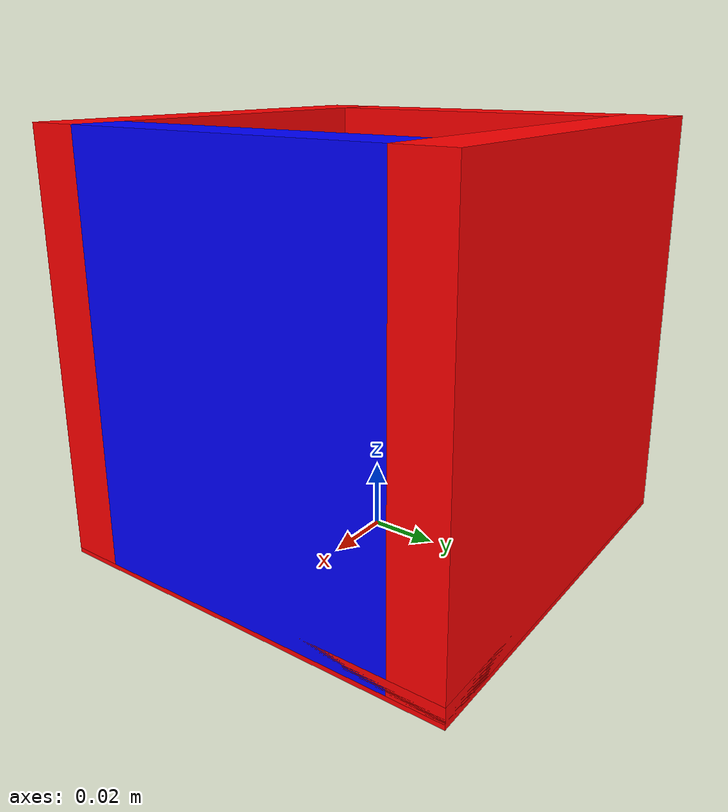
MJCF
<mujoco model="push_box">
    <worldbody>
        <body name="box_0" pos="0 0 0" quat="1 0 0 0">
        <geom conaffinity="8" pos="0 0 0.0016" size="0.064 0.064 0.003" rgba="1 0 0 1.0" type="box" mass="0.0308" friction="0.4296 0.001 0.0001" priority="1"/> <!-- bot -->
            <geom conaffinity="8" pos="0.056 0 0.0624" size="0.008 0.048 0.0624" rgba="0 0 1 1.0" type="box" mass="0.10714"/>
            <geom conaffinity="8" pos="0 0.056 0.0624" size="0.064 0.008 0.0624" rgba="1 0 0 1.0" type="box" mass="0.14286"/>
            <geom conaffinity="8" pos="-0.056 0 0.0624" size="0.008 0.048 0.0624" rgba="1 0 0 1.0" type="box" mass="0.10714"/>
            <geom conaffinity="8" pos="0 -0.056 0.0624" size="0.064 0.008 0.0624" rgba="1 0 0 1.0" type="box" mass="0.14286"/>
            <joint name="box_x_joint" type="slide" pos="0 0 0" axis="1 0 0" />
            <joint name="box_y_joint" type="slide" pos="0 0 0" axis="0 1 0" />
            <joint name="box_z_joint" type="slide" pos="0 0 0" axis="0 0 1" />
            <joint name="box_roll_joint" type="hinge" pos="0 0 0" axis="1 0 0" limited="true" range="-.15 .15"/>
            <joint name="box_pitch_joint" type="hinge" pos="0 0 0" axis="0 1 0" limited="true" range="-.15 .15"/>
            <joint name="box_rot_joint" type="hinge" pos="0 0 0" axis="0 0 1" />
        </body>
    </worldbody>
</mujoco>
